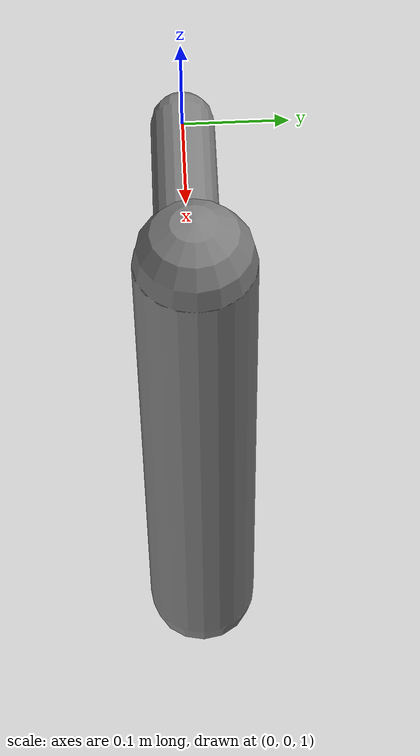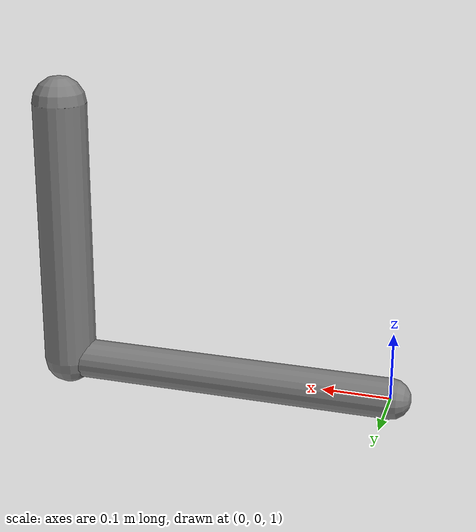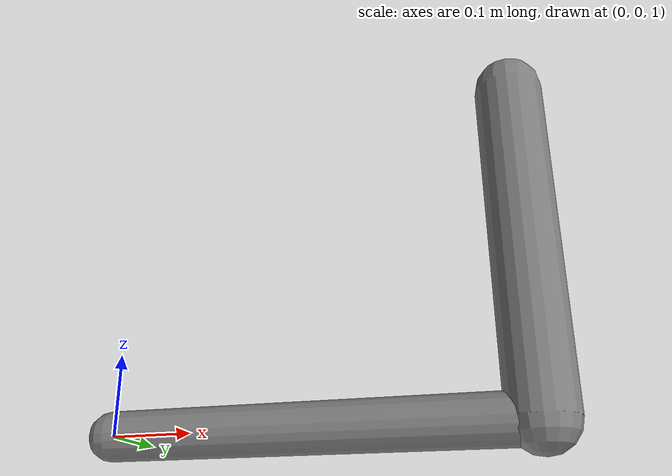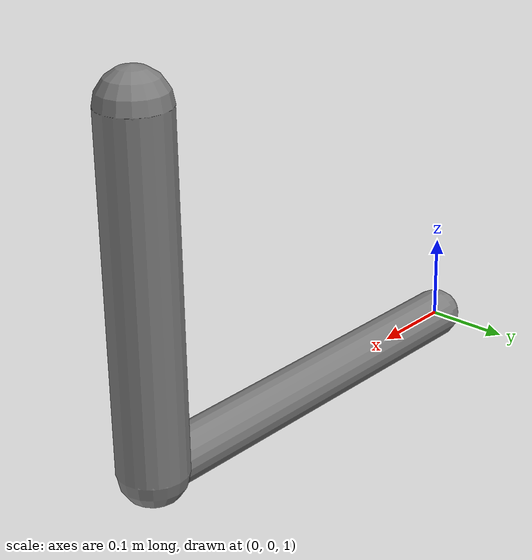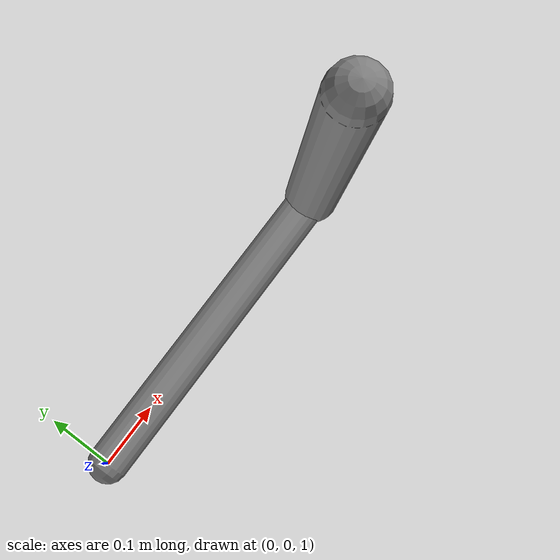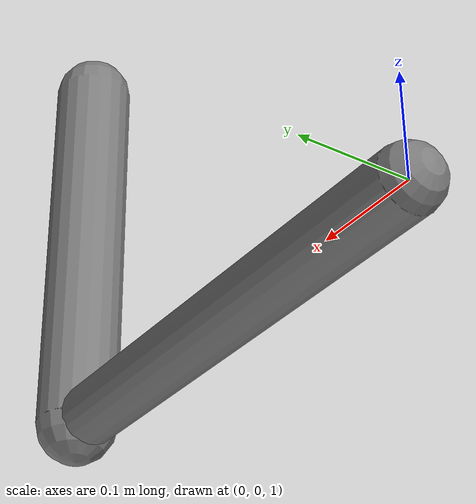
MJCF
<mujoco>
  <option>
   <flag contact="disable"/>
  </option>

  <worldbody>
    <light pos="0 -1 1"/>

    <!-- body 1: pendulum on world hinge, horizontal pointing right -->
    <body name="upper" pos="0 0 1">
      <joint name="hinge1" type="hinge" axis="0 1 0"/>
      <geom type="capsule" size="0.03" fromto="0 0 0 0.5 0 0"/>
      <site name="tip1" pos="0.5 0 0"/>
    </body>

    <!-- body 2: planar free body (slide x, slide z, hinge y) -->
    <body name="lower" pos="0.5 0 1" euler="0 -90 0">
      <joint type="slide" axis="1 0 0"/>
      <joint type="slide" axis="0 0 1"/>
      <joint type="hinge" axis="0 1 0"/>
      <geom type="capsule" size="0.04" fromto="0 0 0 0.4 0 0"/>
      <site name="tip2" pos="0 0 0"/>
    </body>
  </worldbody>

  <equality>
    <connect body1="upper" body2="lower" anchor="0.5 0 0"/>
  </equality>
</mujoco>
